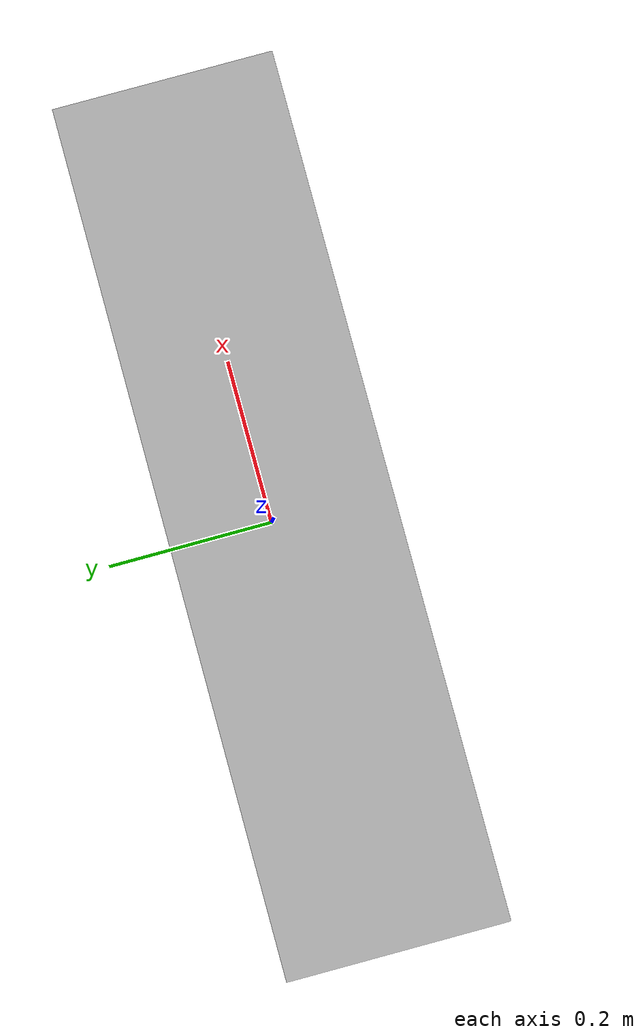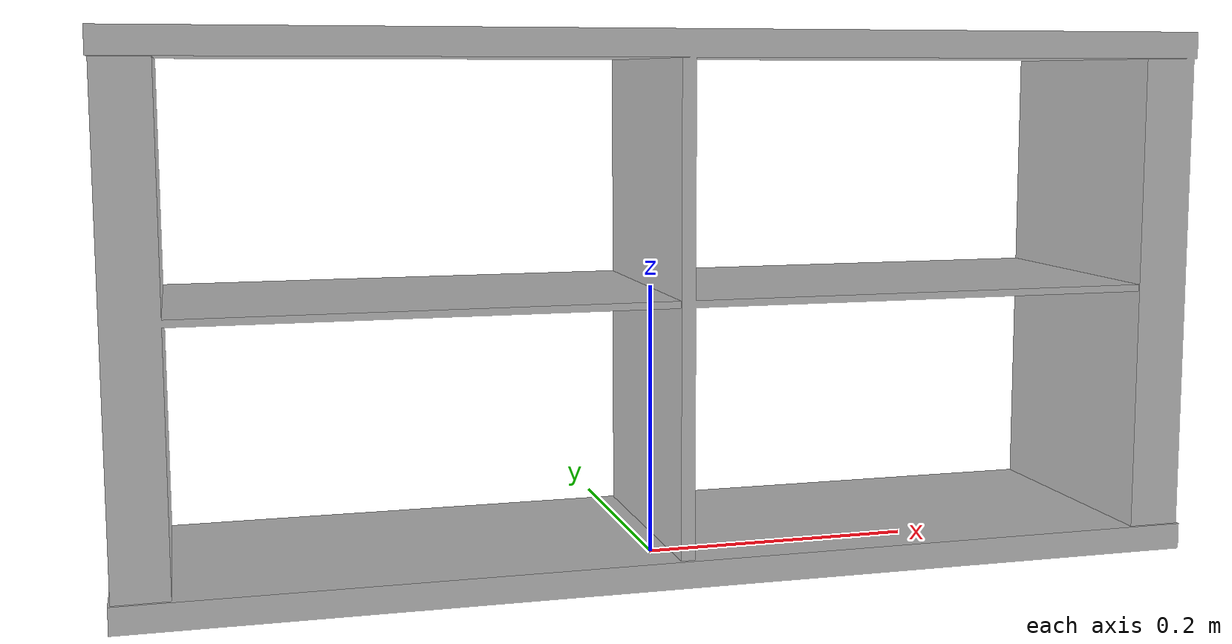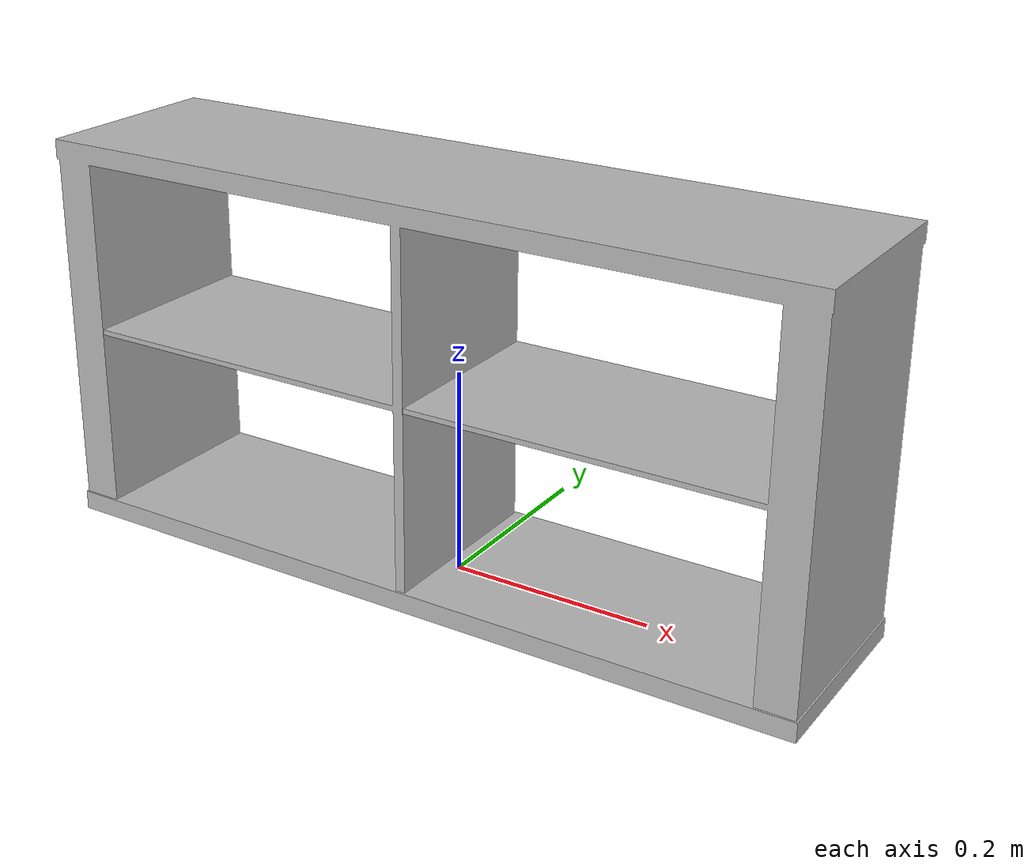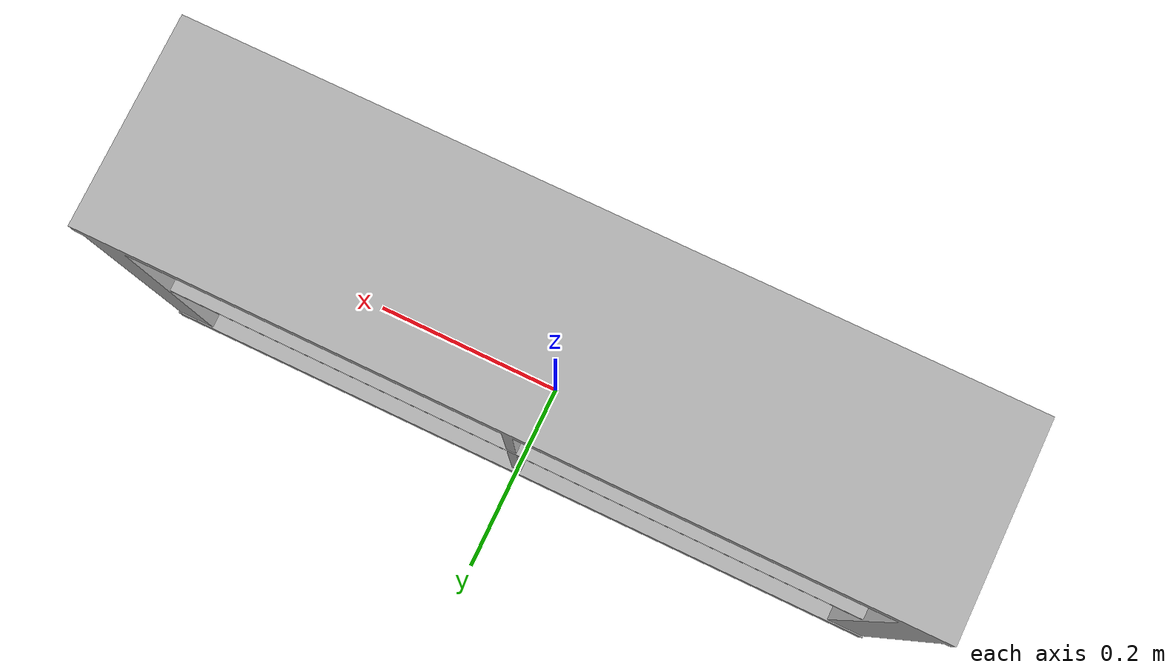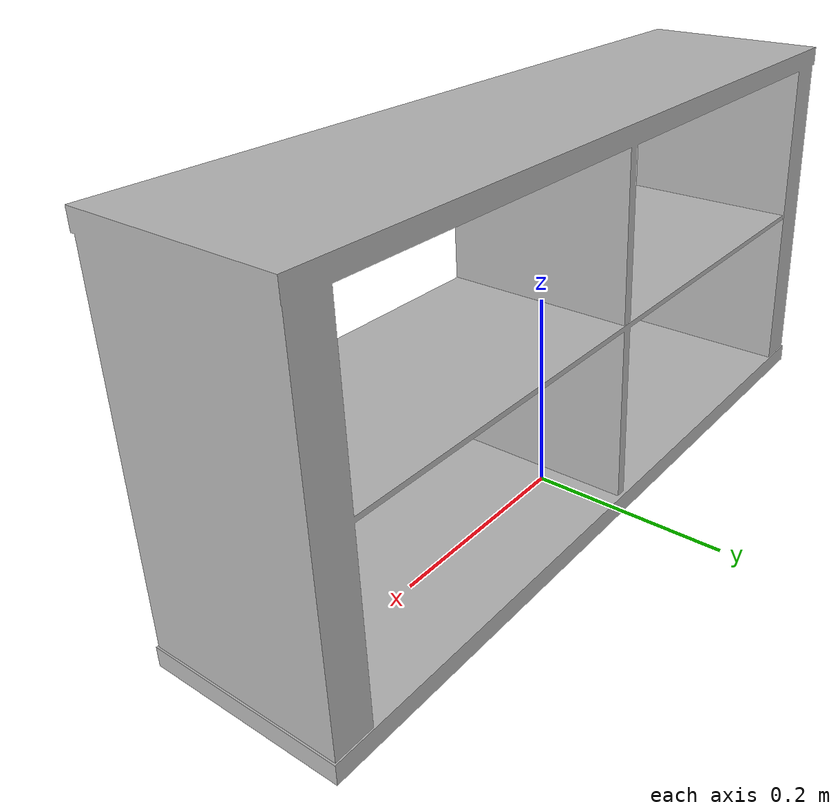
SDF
<?xml version='1.0' encoding='utf-8'?>
<sdf version="1.6">
  <model name="SquareShelf">
    <static>false</static>
    <link name="body">
      <pose>0 0 0 0 0 0</pose>

      <visual name="visual">
        <geometry>
          <mesh>
            <uri>model://SquareShelf/meshes/SquareShelf.obj</uri>
            <scale>1.0 0.5 0.5</scale>  <!-- Scale added here -->
          </mesh>
        </geometry>
      </visual>

      <collision name="collision">
        <geometry>
          <mesh>
            <uri>model://SquareShelf/meshes/SquareShelf_Col.obj</uri>
            <scale>1.0 0.5 0.5</scale>  <!-- Scale added here as well -->
          </mesh>
        </geometry>
      </collision>

    </link>
  </model>
</sdf>
